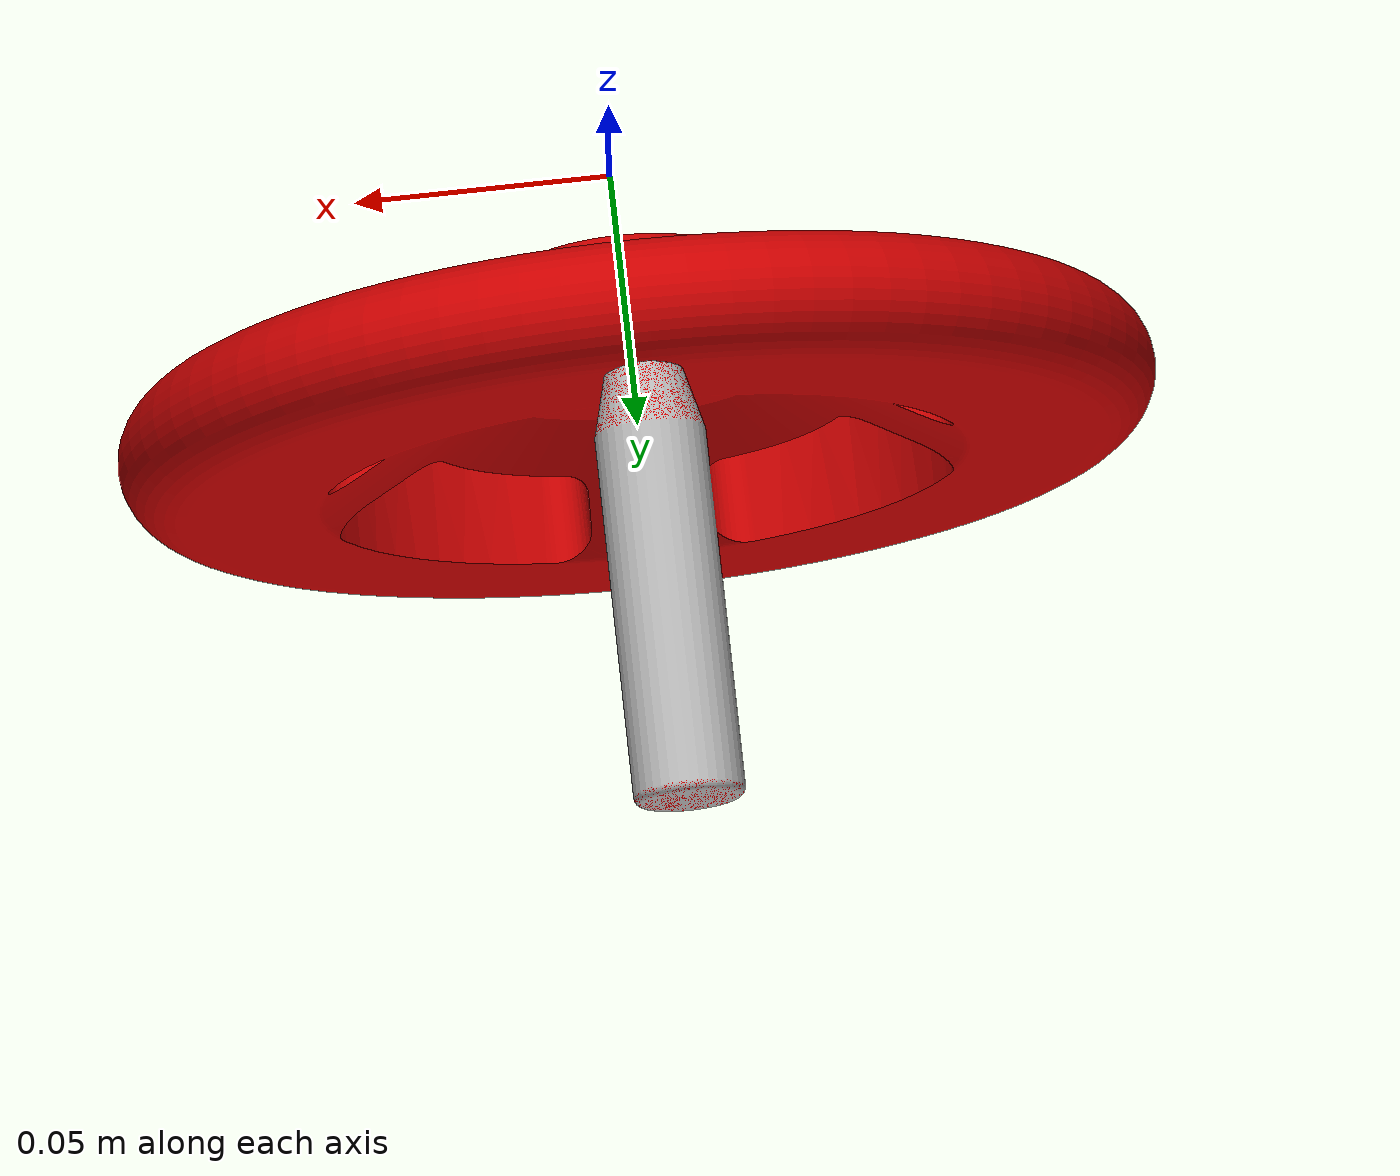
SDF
<?xml version="1.0" ?>
<sdf version="1.4">

  <model name="handle_wheel_valve">
    <link name="handle">
      <pose>0 0.0200 0.015 0 0 1.57</pose>
      <inertial>
        <mass>4.6114</mass>
        <pose>0.0126 0.0036 0 0 0 0</pose>
        <inertia>
          <ixx>0.0252</ixx>
          <ixy>-0.0009</ixy>
          <ixz>0.0000</ixz>
          <iyy>0.0129</iyy>
          <iyz>0.0000</iyz>
          <izz>0.0143</izz>
        </inertia>
      </inertial>
      <collision name="collision">
        <geometry>
          <mesh>
            <uri>model://drc_practice_handle_wheel_valve/meshes/handle_wheel_valve.dae</uri>
          </mesh>
        </geometry>
        <surface>
          <bounce>
            <restitution_coefficient>0.01</restitution_coefficient>
            <threshold>5.0</threshold>
          </bounce>
          <friction>
            <ode>
              <mu>5</mu>
              <mu2>5</mu2>
            </ode>
          </friction>
          <contact>
            <ode>
              <soft_cfm>0.01</soft_cfm>
              <kp>1000000.0</kp>
              <kd>100000.0</kd>
              <max_vel>0.01</max_vel>
              <min_depth>0.001</min_depth>
            </ode>
          </contact>
        </surface>
      </collision>

      <visual name="visual">
        <geometry>
          <mesh>
            <uri>model://drc_practice_handle_wheel_valve/meshes/handle_wheel_valve.dae</uri>
          </mesh>
        </geometry>
      </visual>
    </link>

    <joint name="joint" type="revolute">
      <parent>world</parent>
      <child>handle</child>
      <axis>
        <xyz>0 1 0</xyz>
        <limit>
          <lower>-12.56</lower>
          <upper>12.56</upper>
        </limit>
        <dynamics>
          <!--velocity dependent viscous damping coefficient of the joint-->
          <damping>100</damping>
          <!--default 0, static friction value of the joint-->
          <friction>100</friction>
        </dynamics>
      </axis>
      <physics>
        <ode>
          <cfm_damping>1</cfm_damping>
        </ode>
      </physics>
    </joint>

  </model>

</sdf>
